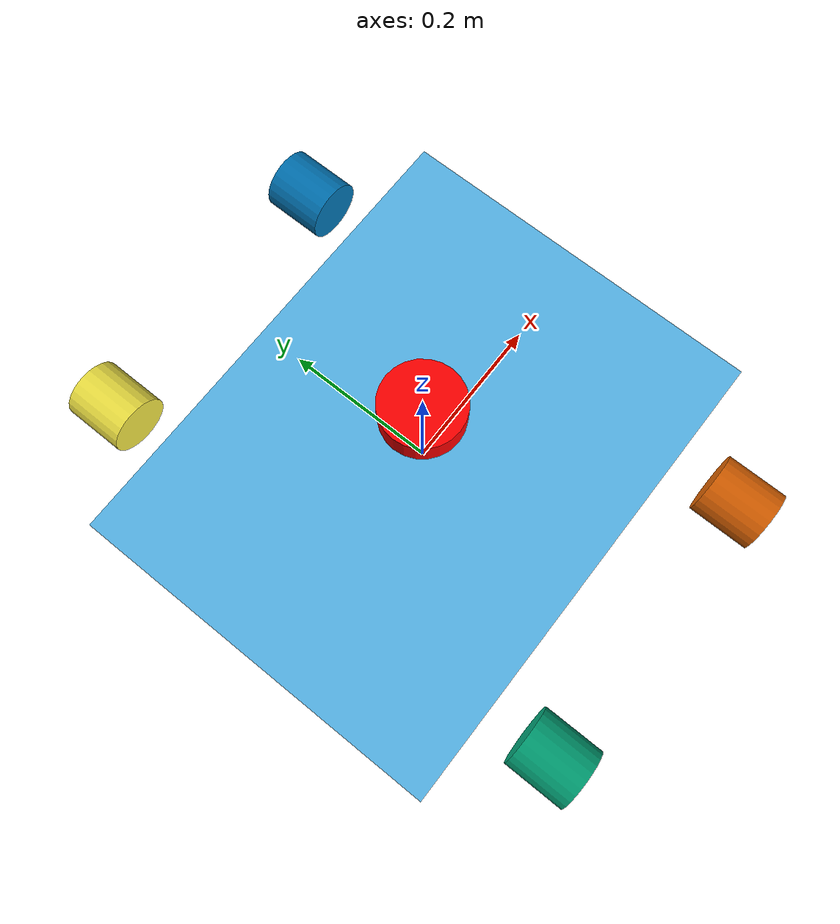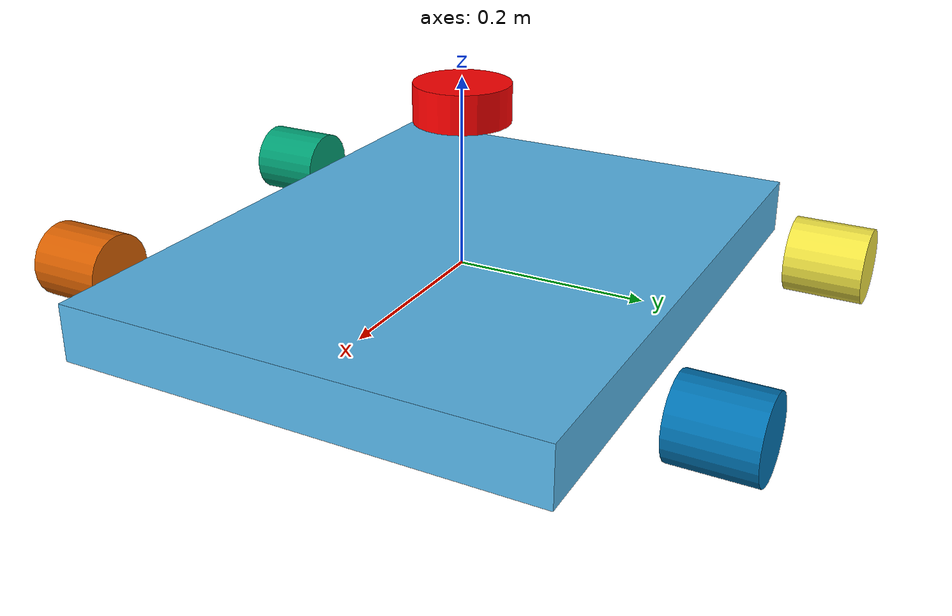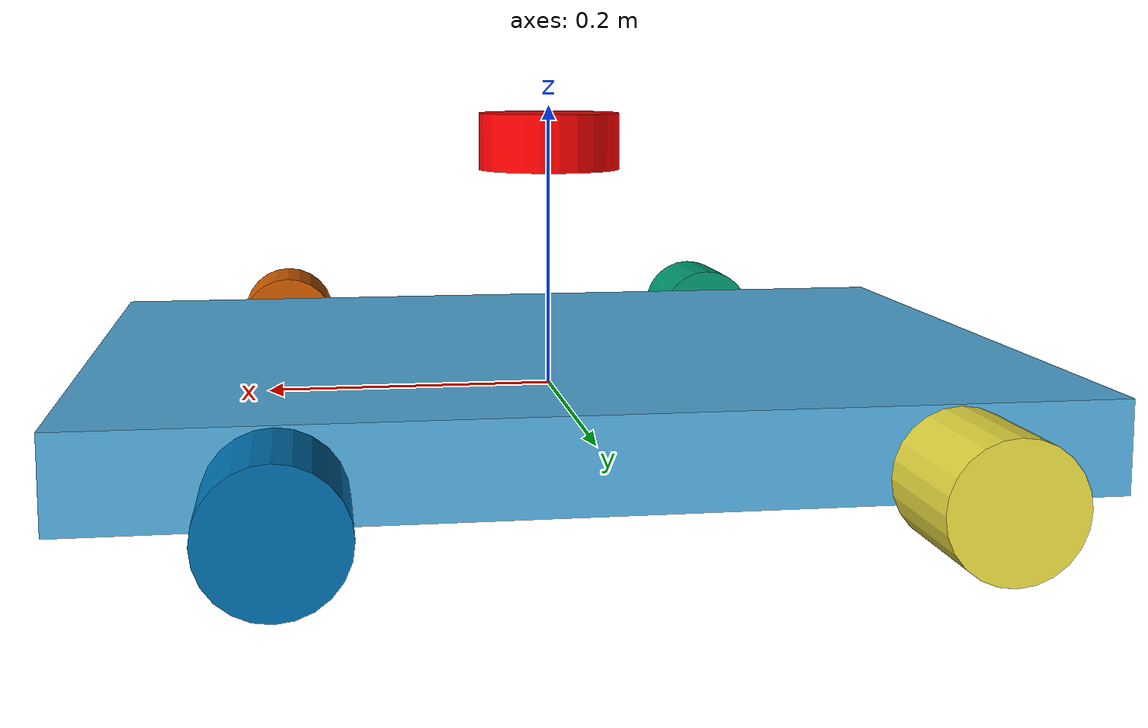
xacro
<?xml version="1.0"?>

<robot name="Robot" xmlns:xacro="http://ros.org/wiki/xacro">
    <xacro:include filename="robot_config.xacro"/>

    <link name="${fixed_frame}"/>

    <link name="base_link">
        <collision>
            <origin xyz="0 0 0" rpy="0 0 0"/>
            <geometry>
                <box size="${robot_body}"/>
            </geometry>
        </collision>

        <visual>
            <origin xyz="0 0 0" rpy="0 0 0"/>
            <geometry>
               <box size="${robot_body}"/>
            </geometry>
            <color rgba="0.0 20.0 0.0 20.0"/>
        </visual>
    </link>
    <joint name="base_joint" type="fixed">
        <parent link="${fixed_frame}"/>
        <child link="base_link" />
        <origin xyz="0 0 0.0" rpy="0 0 0"/>
    </joint>

    <link name="wheel_right_back">
        <visual>
        <origin xyz="0 0 0" rpy="1.57 0 0" />
        <geometry>
            <cylinder length="${wheel_length}" radius="${wheel_radius}" />
        </geometry>
        </visual>
        <collision>
            <origin xyz="0 0 0" rpy="1.57 0 0" />
            <geometry>
                <cylinder length="${wheel_length}" radius="${wheel_radius}" />
            </geometry>
        </collision>
    </link>

    <joint name="wheel_right_back_joint" type="fixed">
        <origin xyz="${wheel_right_back_joint}" rpy="3.14 0 0" />
        <parent link="base_link" />
        <child link="wheel_right_back" />
        <axis xyz="0 1 0" />
    </joint>

    <link name="wheel_left_back">
        <visual>
            <origin xyz="0 0 0" rpy="-1.57 0 0" />
            <geometry>
                <cylinder length="${wheel_length}" radius="${wheel_radius}" />
            </geometry>
        </visual>
        <collision>
            <origin xyz="0 0 0" rpy="-1.57 0 0" />
            <geometry>
                <cylinder length="${wheel_length}" radius="${wheel_radius}" />
            </geometry>
        </collision>
    </link>

    <joint name="wheel_left_back_joint" type="fixed">
        <origin xyz="${wheel_left_back_joint}" rpy="0 0 0" />
        <parent link="base_link" />
        <child link="wheel_left_back" />
        <axis xyz="0 1 0" />
    </joint>
    <link name="wheel_left_front">
        <visual>
            <origin xyz="0 0 0" rpy="-1.57 0 0" />
            <geometry>
                <cylinder length="${wheel_length}" radius="${wheel_radius}" />
            </geometry>
        </visual>
        <collision>
            <origin xyz="0 0 0" rpy="-1.57 0 0" />
            <geometry>
                <cylinder length="${wheel_length}" radius="${wheel_radius}" />
            </geometry>
        </collision>
    </link>

    <joint name="wheel_left_front_joint" type="fixed">
        <origin xyz="${wheel_left_front_joint}" rpy="0 0 0" />
        <parent link="base_link" />
        <child link="wheel_left_front" />
        <axis xyz="0 1 0" />
    </joint>

    <link name="wheel_right_front">
        <visual>
            <origin xyz="0 0 0" rpy="-1.57 0 0" />
            <geometry>
                <cylinder length="${wheel_length}" radius="${wheel_radius}" />
            </geometry>
        </visual>
        <collision>
            <origin xyz="0 0 0" rpy="-1.57 0 0" />
            <geometry>
                <cylinder length="${wheel_length}" radius="${wheel_radius}" />
            </geometry>
        </collision>
    </link>

    <joint name="wheel_right_front_joint" type="fixed">
        <origin xyz="${wheel_right_front_joint}" rpy="0 0 0" />
        <parent link="base_link" />
        <child link="wheel_right_front" />
        <axis xyz="0 1 0" />
    </joint>

    <joint name="laser_joint" type="fixed">
        <parent link="base_link"/>
        <child link="laser_frame"/>
        <origin xyz="0.0 0 0.175" rpy="0 0 0"/>
    </joint>

    <link name="laser_frame">
        <visual>
            <geometry>
                <cylinder radius="0.05" length="0.04"/>
            </geometry>
            <material name="red"/>
        </visual>

        <collision>
            <geometry>
                <cylinder radius="0.05" length="0.04"/>
            </geometry>
        </collision>
    </link>

    <material name="red">
        <color rgba="1 0 0 1"/>
    </material>

</robot>

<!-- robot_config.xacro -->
<robot xmlns:xacro="http://www.ros.org/wiki/xacro" name="robot_parts">

    <xacro:property name="fixed_frame" value="base_footprint" />

    <xacro:property name="robot_body" value="0.64 0.5 0.06" />

    <xacro:property name="wheel_radius" value="0.04" />
    <xacro:property name="wheel_length" value="0.08" />

    <xacro:property name="wheel_right_back_joint" value="-0.19 -0.34 0" />
    <xacro:property name="wheel_left_back_joint" value="-0.19 0.34 0" />

    <xacro:property name="wheel_right_front_joint" value="0.19 -0.34 0" />
    <xacro:property name="wheel_left_front_joint" value="0.19 0.34 0" />

</robot>
